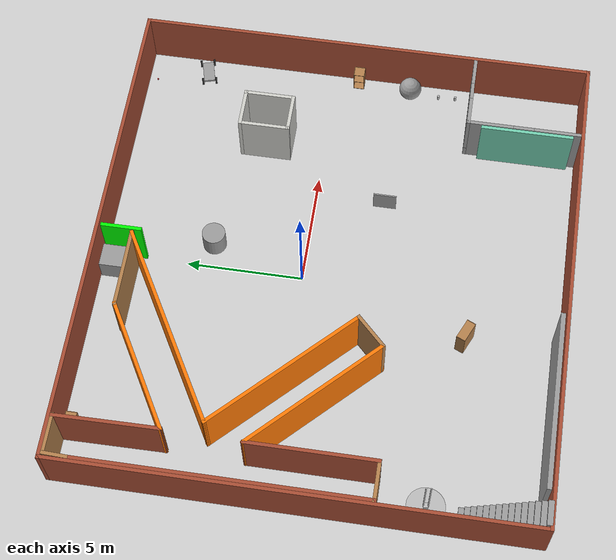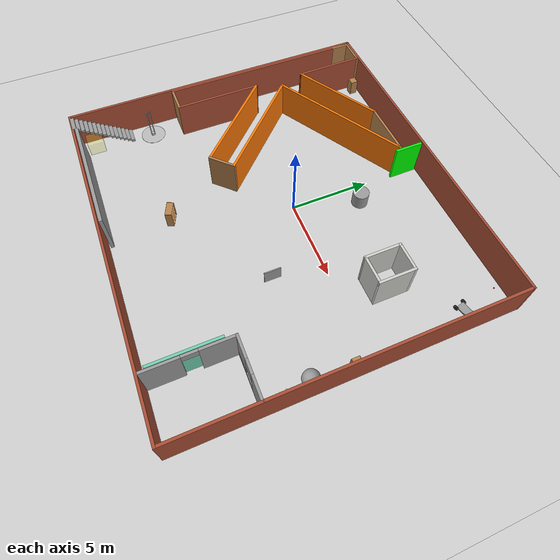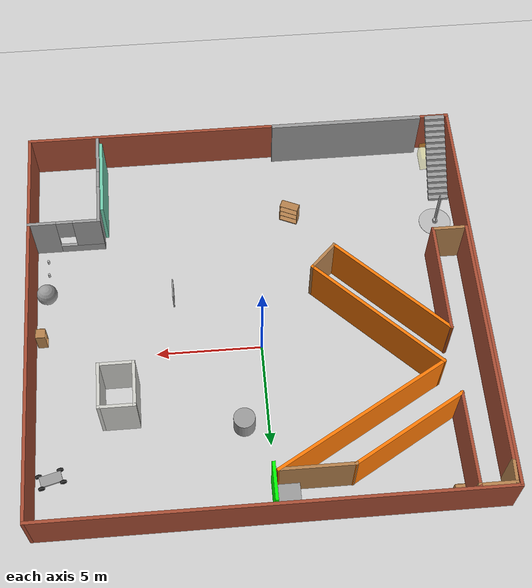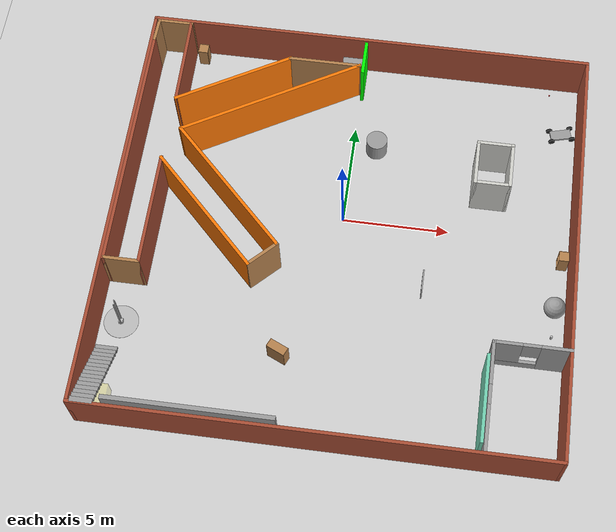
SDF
<sdf version="1.6">
 <world name="default">
  <plugin name="welcome_msg" filename="libwelcome_msg.so"/>
  <light name="sun" type="directional">
   <pose>0 0 10 0 -0 0</pose>
   <diffuse>0.8 0.8 0.8 1</diffuse>
   <specular>0.2 0.2 0.2 1</specular>
   <attenuation>
    <range>1000</range>
    <constant>0.9</constant>
    <linear>0.01</linear>
    <quadratic>0.001</quadratic>
   </attenuation>
   <direction>-0.5 0.1 -0.9</direction>
  </light>
  <model name="ground_plane">
   <static>1</static>
   <link name="link">
    <collision name="collision">
     <geometry><plane><normal>0 0 1</normal><size>100 100</size></plane></geometry>
     <surface>
      <contact><collide_bitmask>65535</collide_bitmask></contact>
      <friction><ode><mu>100</mu><mu2>50</mu2></ode></friction>
     </surface>
    </collision>
    <visual name="visual">
     <cast_shadows>0</cast_shadows>
     <geometry><plane><normal>0 0 1</normal><size>100 100</size></plane></geometry>
     <material>
      <script><uri>file://media/materials/scripts/gazebo.material</uri><name>Gazebo/Grey</name></script>
     </material>
    </visual>
   </link>
  </model>
  <gravity>0 0 -9.8</gravity>
  <magnetic_field>6e-06 2.3e-05 -4.2e-05</magnetic_field>
  <atmosphere type="adiabatic"/>
  <physics name="default_physics" default="0" type="ode">
   <max_step_size>0.001</max_step_size>
   <real_time_factor>1</real_time_factor>
   <real_time_update_rate>1000</real_time_update_rate>
  </physics>
  <scene><ambient>0.4 0.4 0.4 1</ambient><background>0.7 0.7 0.7 1</background><shadows>1</shadows></scene>
  <spherical_coordinates>
   <surface_model>EARTH_WGS84</surface_model>
   <latitude_deg>0</latitude_deg>
   <longitude_deg>0</longitude_deg>
   <elevation>0</elevation>
   <heading_deg>0</heading_deg>
  </spherical_coordinates>
  <model name="k_map">
   <pose>-5.13887 2.04621 0 0 -0 0</pose>
   <link name="Wall_0">
    <collision name="Wall_0_Collision">
     <geometry><box><size>12 0.15 2.5</size></box></geometry>
     <pose>0 0 1.25 0 -0 0</pose>
    </collision>
    <visual name="Wall_0_Visual">
     <pose>0 0 1.25 0 -0 0</pose>
     <geometry><box><size>12 0.15 2.5</size></box></geometry>
     <material>
      <script><uri>file://media/materials/scripts/gazebo.material</uri><name>Gazebo/Bricks</name></script>
      <ambient>1 1 1 1</ambient>
     </material>
     <meta><layer>0</layer></meta>
    </visual>
    <pose>-5.05323 -0.546651 0 0 0 -1.5708</pose>
   </link>
   <link name="Wall_1">
    <collision name="Wall_1_Collision">
     <geometry><box><size>1.75 0.15 2.5</size></box></geometry>
     <pose>0 0 1.25 0 -0 0</pose>
    </collision>
    <visual name="Wall_1_Visual">
     <pose>0 0 1.25 0 -0 0</pose>
     <geometry><box><size>1.75 0.15 2.5</size></box></geometry>
     <material>
      <script><uri>file://media/materials/scripts/gazebo.material</uri><name>Gazebo/Wood</name></script>
      <ambient>1 1 1 1</ambient>
     </material>
     <meta><layer>0</layer></meta>
    </visual>
    <pose>-4.25323 -6.47165 0 0 -0 0</pose>
   </link>
   <link name="Wall_10">
    <collision name="Wall_10_Collision">
     <geometry><box><size>1.75 0.15 2.5</size></box></geometry>
     <pose>0 0 1.25 0 -0 0</pose>
    </collision>
    <visual name="Wall_10_Visual">
     <pose>0 0 1.25 0 -0 0</pose>
     <geometry><box><size>1.75 0.15 2.5</size></box></geometry>
     <material>
      <script><uri>file://media/materials/scripts/gazebo.material</uri><name>Gazebo/Wood</name></script>
      <ambient>1 1 1 1</ambient>
     </material>
     <meta><layer>0</layer></meta>
    </visual>
    <pose>-4.21074 6.46879 0 0 -0 3.14159</pose>
   </link>
   <link name="Wall_14">
    <collision name="Wall_14_Collision">
     <geometry><box><size>1.24127 0.15 2.5</size></box></geometry>
     <pose>0 0 1.25 0 -0 0</pose>
    </collision>
    <visual name="Wall_14_Visual">
     <pose>0 0 1.25 0 -0 0</pose>
     <geometry><box><size>1.24127 0.15 2.5</size></box></geometry>
     <material>
      <script><uri>file://media/materials/scripts/gazebo.material</uri><name>Gazebo/Wood</name></script>
      <ambient>1 1 1 1</ambient>
     </material>
     <meta><layer>0</layer></meta>
    </visual>
    <pose>-5.03198 5.92357 0 0 -0 1.53185</pose>
   </link>
   <link name="Wall_2">
    <collision name="Wall_2_Collision">
     <geometry><box><size>5.5 0.15 2.5</size></box></geometry>
     <pose>0 0 1.25 0 -0 0</pose>
    </collision>
    <visual name="Wall_2_Visual">
     <pose>0 0 1.25 0 -0 0</pose>
     <geometry><box><size>5.5 0.15 2.5</size></box></geometry>
     <material>
      <script><uri>file://media/materials/scripts/gazebo.material</uri><name>Gazebo/Bricks</name></script>
      <ambient>1 1 1 1</ambient>
     </material>
     <meta><layer>0</layer></meta>
    </visual>
    <pose>-3.45323 -3.79665 0 0 -0 1.5708</pose>
   </link>
   <link name="Wall_3">
    <collision name="Wall_3_Collision">
     <geometry><box><size>7 0.15 2.5</size></box></geometry>
     <pose>0 0 1.25 0 -0 0</pose>
    </collision>
    <visual name="Wall_3_Visual">
     <pose>0 0 1.25 0 -0 0</pose>
     <geometry><box><size>7 0.15 2.5</size></box></geometry>
     <material>
      <script><uri>file://media/materials/scripts/gazebo.material</uri><name>Gazebo/Grey</name></script>
      <ambient>0.996078 0.47451 0.0196078 1</ambient>
     </material>
     <meta><layer>0</layer></meta>
    </visual>
    <pose>-1.03139 -3.54349 0 0 0 -0.785398</pose>
   </link>
   <link name="Wall_4">
    <collision name="Wall_4_Collision">
     <geometry><box><size>1.75 0.15 2.5</size></box></geometry>
     <pose>0 0 1.25 0 -0 0</pose>
    </collision>
    <visual name="Wall_4_Visual">
     <pose>0 0 1.25 0 -0 0</pose>
     <geometry><box><size>1.75 0.15 2.5</size></box></geometry>
     <material>
      <script><uri>file://media/materials/scripts/gazebo.material</uri><name>Gazebo/Wood</name></script>
      <ambient>1 1 1 1</ambient>
     </material>
     <meta><layer>0</layer></meta>
    </visual>
    <pose>1.95614 -5.39965 0 0 -0 0.785398</pose>
   </link>
   <link name="Wall_5">
    <collision name="Wall_5_Collision">
     <geometry><box><size>7.75 0.15 2.5</size></box></geometry>
     <pose>0 0 1.25 0 -0 0</pose>
    </collision>
    <visual name="Wall_5_Visual">
     <pose>0 0 1.25 0 -0 0</pose>
     <geometry><box><size>7.75 0.15 2.5</size></box></geometry>
     <material>
      <script><uri>file://media/materials/scripts/gazebo.material</uri><name>Gazebo/Grey</name></script>
      <ambient>0.996078 0.47451 0.0196078 1</ambient>
     </material>
     <meta><layer>0</layer></meta>
    </visual>
    <pose>-0.165184 -2.14696 0 0 -0 2.35619</pose>
   </link>
   <link name="Wall_6">
    <collision name="Wall_6_Collision">
     <geometry><box><size>9.25 0.15 2.5</size></box></geometry>
     <pose>0 0 1.25 0 -0 0</pose>
    </collision>
    <visual name="Wall_6_Visual">
     <pose>0 0 1.25 0 -0 0</pose>
     <geometry><box><size>9.25 0.15 2.5</size></box></geometry>
     <material>
      <script><uri>file://media/materials/scripts/gazebo.material</uri><name>Gazebo/Grey</name></script>
      <ambient>0.996078 0.47451 0.0196078 1</ambient>
     </material>
     <meta><layer>0</layer></meta>
    </visual>
    <pose>1.08823 2.81505 0 0 -0 0.523599</pose>
   </link>
   <link name="Wall_7">
    <collision name="Wall_7_Collision">
     <geometry><box><size>3.5 0.15 2.5</size></box></geometry>
     <pose>0 0 1.25 0 -0 0</pose>
    </collision>
    <visual name="Wall_7_Visual">
     <pose>0 0 1.25 0 -0 0</pose>
     <geometry><box><size>3.5 0.15 2.5</size></box></geometry>
     <material>
      <script><uri>file://media/materials/scripts/gazebo.material</uri><name>Gazebo/Wood</name></script>
      <ambient>1 1 1 1</ambient>
     </material>
     <meta><layer>0</layer></meta>
    </visual>
    <pose>3.35364 5.09005 0 0 -0 3.14159</pose>
   </link>
   <link name="Wall_8">
    <collision name="Wall_8_Collision">
     <geometry><box><size>6 0.15 2.5</size></box></geometry>
     <pose>0 0 1.25 0 -0 0</pose>
    </collision>
    <visual name="Wall_8_Visual">
     <pose>0 0 1.25 0 -0 0</pose>
     <geometry><box><size>6 0.15 2.5</size></box></geometry>
     <material>
      <script><uri>file://media/materials/scripts/gazebo.material</uri><name>Gazebo/Grey</name></script>
      <ambient>0.996078 0.47451 0.0196078 1</ambient>
     </material>
     <meta><layer>0</layer></meta>
    </visual>
    <pose>-0.854482 3.62755 0 0 0 -2.61799</pose>
   </link>
   <link name="Wall_9">
    <collision name="Wall_9_Collision">
     <geometry><box><size>4.45399 0.15 2.5</size></box></geometry>
     <pose>0 0 1.25 0 -0 0</pose>
    </collision>
    <visual name="Wall_9_Visual">
     <pose>0 0 1.25 0 -0 0</pose>
     <geometry><box><size>4.45399 0.15 2.5</size></box></geometry>
     <material>
      <script><uri>file://media/materials/scripts/gazebo.material</uri><name>Gazebo/Bricks</name></script>
      <ambient>1 1 1 1</ambient>
     </material>
     <meta><layer>0</layer></meta>
    </visual>
    <pose>-3.41074 4.31692 0 0 -0 1.58154</pose>
   </link>
   <static>1</static>
  </model>
  <model name="kevin_2">
   <pose>0.211598 -1.27295 0 0 -0 0</pose>
   <link name="Stairs_1">
    <visual name="Stairs_1_Visual_0">
     <pose>-9.91319 -6.55547 0.083333 0 -0 0</pose>
     <geometry><box><size>1 0.233333 0.166667</size></box></geometry>
     <material>
      <script><uri>file://media/materials/scripts/gazebo.material</uri><name>Gazebo/Grey</name></script>
      <ambient>1 1 1 1</ambient>
     </material>
     <meta><layer>0</layer></meta>
    </visual>
    <collision name="Stairs_1_Collision_0">
     <geometry><box><size>1 0.233333 0.166667</size></box></geometry>
     <pose>-9.91319 -6.55547 0.083333 0 -0 0</pose>
    </collision>
    <visual name="Stairs_1_Visual_1">
     <pose>-9.91319 -6.78881 0.25 0 -0 0</pose>
     <geometry><box><size>1 0.233333 0.166667</size></box></geometry>
     <material>
      <script><uri>file://media/materials/scripts/gazebo.material</uri><name>Gazebo/Grey</name></script>
      <ambient>1 1 1 1</ambient>
     </material>
     <meta><layer>0</layer></meta>
    </visual>
    <collision name="Stairs_1_Collision_1">
     <geometry><box><size>1 0.233333 0.166667</size></box></geometry>
     <pose>-9.91319 -6.78881 0.25 0 -0 0</pose>
    </collision>
    <visual name="Stairs_1_Visual_2">
     <pose>-9.91319 -7.02214 0.416667 0 -0 0</pose>
     <geometry><box><size>1 0.233333 0.166667</size></box></geometry>
     <material>
      <script><uri>file://media/materials/scripts/gazebo.material</uri><name>Gazebo/Grey</name></script>
      <ambient>1 1 1 1</ambient>
     </material>
     <meta><layer>0</layer></meta>
    </visual>
    <collision name="Stairs_1_Collision_2">
     <geometry><box><size>1 0.233333 0.166667</size></box></geometry>
     <pose>-9.91319 -7.02214 0.416667 0 -0 0</pose>
    </collision>
    <visual name="Stairs_1_Visual_3">
     <pose>-9.91319 -7.25547 0.583333 0 -0 0</pose>
     <geometry><box><size>1 0.233333 0.166667</size></box></geometry>
     <material>
      <script><uri>file://media/materials/scripts/gazebo.material</uri><name>Gazebo/Grey</name></script>
      <ambient>1 1 1 1</ambient>
     </material>
     <meta><layer>0</layer></meta>
    </visual>
    <collision name="Stairs_1_Collision_3">
     <geometry><box><size>1 0.233333 0.166667</size></box></geometry>
     <pose>-9.91319 -7.25547 0.583333 0 -0 0</pose>
    </collision>
    <visual name="Stairs_1_Visual_4">
     <pose>-9.91319 -7.48881 0.75 0 -0 0</pose>
     <geometry><box><size>1 0.233333 0.166667</size></box></geometry>
     <material>
      <script><uri>file://media/materials/scripts/gazebo.material</uri><name>Gazebo/Grey</name></script>
      <ambient>1 1 1 1</ambient>
     </material>
     <meta><layer>0</layer></meta>
    </visual>
    <collision name="Stairs_1_Collision_4">
     <geometry><box><size>1 0.233333 0.166667</size></box></geometry>
     <pose>-9.91319 -7.48881 0.75 0 -0 0</pose>
    </collision>
    <visual name="Stairs_1_Visual_5">
     <pose>-9.91319 -7.72214 0.916667 0 -0 0</pose>
     <geometry><box><size>1 0.233333 0.166667</size></box></geometry>
     <material>
      <script><uri>file://media/materials/scripts/gazebo.material</uri><name>Gazebo/Grey</name></script>
      <ambient>1 1 1 1</ambient>
     </material>
     <meta><layer>0</layer></meta>
    </visual>
    <collision name="Stairs_1_Collision_5">
     <geometry><box><size>1 0.233333 0.166667</size></box></geometry>
     <pose>-9.91319 -7.72214 0.916667 0 -0 0</pose>
    </collision>
    <visual name="Stairs_1_Visual_6">
     <pose>-9.91319 -7.95547 1.08333 0 -0 0</pose>
     <geometry><box><size>1 0.233333 0.166667</size></box></geometry>
     <material>
      <script><uri>file://media/materials/scripts/gazebo.material</uri><name>Gazebo/Grey</name></script>
      <ambient>1 1 1 1</ambient>
     </material>
     <meta><layer>0</layer></meta>
    </visual>
    <collision name="Stairs_1_Collision_6">
     <geometry><box><size>1 0.233333 0.166667</size></box></geometry>
     <pose>-9.91319 -7.95547 1.08333 0 -0 0</pose>
    </collision>
    <visual name="Stairs_1_Visual_7">
     <pose>-9.91319 -8.18881 1.25 0 -0 0</pose>
     <geometry><box><size>1 0.233333 0.166667</size></box></geometry>
     <material>
      <script><uri>file://media/materials/scripts/gazebo.material</uri><name>Gazebo/Grey</name></script>
      <ambient>1 1 1 1</ambient>
     </material>
     <meta><layer>0</layer></meta>
    </visual>
    <collision name="Stairs_1_Collision_7">
     <geometry><box><size>1 0.233333 0.166667</size></box></geometry>
     <pose>-9.91319 -8.18881 1.25 0 -0 0</pose>
    </collision>
    <visual name="Stairs_1_Visual_8">
     <pose>-9.91319 -8.42214 1.41667 0 -0 0</pose>
     <geometry><box><size>1 0.233333 0.166667</size></box></geometry>
     <material>
      <script><uri>file://media/materials/scripts/gazebo.material</uri><name>Gazebo/Grey</name></script>
      <ambient>1 1 1 1</ambient>
     </material>
     <meta><layer>0</layer></meta>
    </visual>
    <collision name="Stairs_1_Collision_8">
     <geometry><box><size>1 0.233333 0.166667</size></box></geometry>
     <pose>-9.91319 -8.42214 1.41667 0 -0 0</pose>
    </collision>
    <visual name="Stairs_1_Visual_9">
     <pose>-9.91319 -8.65547 1.58333 0 -0 0</pose>
     <geometry><box><size>1 0.233333 0.166667</size></box></geometry>
     <material>
      <script><uri>file://media/materials/scripts/gazebo.material</uri><name>Gazebo/Grey</name></script>
      <ambient>1 1 1 1</ambient>
     </material>
     <meta><layer>0</layer></meta>
    </visual>
    <collision name="Stairs_1_Collision_9">
     <geometry><box><size>1 0.233333 0.166667</size></box></geometry>
     <pose>-9.91319 -8.65547 1.58333 0 -0 0</pose>
    </collision>
    <visual name="Stairs_1_Visual_10">
     <pose>-9.91319 -8.88881 1.75 0 -0 0</pose>
     <geometry><box><size>1 0.233333 0.166667</size></box></geometry>
     <material>
      <script><uri>file://media/materials/scripts/gazebo.material</uri><name>Gazebo/Grey</name></script>
      <ambient>1 1 1 1</ambient>
     </material>
     <meta><layer>0</layer></meta>
    </visual>
    <collision name="Stairs_1_Collision_10">
     <geometry><box><size>1 0.233333 0.166667</size></box></geometry>
     <pose>-9.91319 -8.88881 1.75 0 -0 0</pose>
    </collision>
    <visual name="Stairs_1_Visual_11">
     <pose>-9.91319 -9.12214 1.91667 0 -0 0</pose>
     <geometry><box><size>1 0.233333 0.166667</size></box></geometry>
     <material>
      <script><uri>file://media/materials/scripts/gazebo.material</uri><name>Gazebo/Grey</name></script>
      <ambient>1 1 1 1</ambient>
     </material>
     <meta><layer>0</layer></meta>
    </visual>
    <collision name="Stairs_1_Collision_11">
     <geometry><box><size>1 0.233333 0.166667</size></box></geometry>
     <pose>-9.91319 -9.12214 1.91667 0 -0 0</pose>
    </collision>
    <visual name="Stairs_1_Visual_12">
     <pose>-9.91319 -9.35547 2.08333 0 -0 0</pose>
     <geometry><box><size>1 0.233333 0.166667</size></box></geometry>
     <material>
      <script><uri>file://media/materials/scripts/gazebo.material</uri><name>Gazebo/Grey</name></script>
      <ambient>1 1 1 1</ambient>
     </material>
     <meta><layer>0</layer></meta>
    </visual>
    <collision name="Stairs_1_Collision_12">
     <geometry><box><size>1 0.233333 0.166667</size></box></geometry>
     <pose>-9.91319 -9.35547 2.08333 0 -0 0</pose>
    </collision>
    <visual name="Stairs_1_Visual_13">
     <pose>-9.91319 -9.58881 2.25 0 -0 0</pose>
     <geometry><box><size>1 0.233333 0.166667</size></box></geometry>
     <material>
      <script><uri>file://media/materials/scripts/gazebo.material</uri><name>Gazebo/Grey</name></script>
      <ambient>1 1 1 1</ambient>
     </material>
     <meta><layer>0</layer></meta>
    </visual>
    <collision name="Stairs_1_Collision_13">
     <geometry><box><size>1 0.233333 0.166667</size></box></geometry>
     <pose>-9.91319 -9.58881 2.25 0 -0 0</pose>
    </collision>
    <visual name="Stairs_1_Visual_14">
     <pose>-9.91319 -9.82214 2.41667 0 -0 0</pose>
     <geometry><box><size>1 0.233333 0.166667</size></box></geometry>
     <material>
      <script><uri>file://media/materials/scripts/gazebo.material</uri><name>Gazebo/Grey</name></script>
      <ambient>1 1 1 1</ambient>
     </material>
     <meta><layer>0</layer></meta>
    </visual>
    <collision name="Stairs_1_Collision_14">
     <geometry><box><size>1 0.233333 0.166667</size></box></geometry>
     <pose>-9.91319 -9.82214 2.41667 0 -0 0</pose>
    </collision>
   </link>
   <link name="Wall_11">
    <collision name="Wall_11_Collision">
     <geometry><box><size>20 0.15 2.5</size></box></geometry>
     <pose>0 0 1.25 0 -0 0</pose>
    </collision>
    <visual name="Wall_11_Visual">
     <pose>0 0 1.25 0 -0 0</pose>
     <geometry><box><size>20 0.15 2.5</size></box></geometry>
     <material>
      <script><uri>file://media/materials/scripts/gazebo.material</uri><name>Gazebo/Bricks</name></script>
      <ambient>1 1 1 1</ambient>
     </material>
     <meta><layer>0</layer></meta>
    </visual>
    <pose>-10.55 0 0 0 0 -1.5708</pose>
   </link>
   <link name="Wall_12">
    <collision name="Wall_12_Collision">
     <geometry><box><size>21.25 0.15 2.5</size></box></geometry>
     <pose>0 0 1.25 0 -0 0</pose>
    </collision>
    <visual name="Wall_12_Visual">
     <pose>0 0 1.25 0 -0 0</pose>
     <geometry><box><size>21.25 0.15 2.5</size></box></geometry>
     <material>
      <script><uri>file://media/materials/scripts/gazebo.material</uri><name>Gazebo/Bricks</name></script>
      <ambient>1 1 1 1</ambient>
     </material>
     <meta><layer>0</layer></meta>
    </visual>
    <pose>0 -9.925 0 0 -0 0</pose>
   </link>
   <link name="Wall_13">
    <collision name="Wall_13_Collision">
     <geometry><box><size>20 0.15 2.5</size></box></geometry>
     <pose>0 0 1.25 0 -0 0</pose>
    </collision>
    <visual name="Wall_13_Visual">
     <pose>0 0 1.25 0 -0 0</pose>
     <geometry><box><size>20 0.15 2.5</size></box></geometry>
     <material>
      <script><uri>file://media/materials/scripts/gazebo.material</uri><name>Gazebo/Bricks</name></script>
      <ambient>1 1 1 1</ambient>
     </material>
     <meta><layer>0</layer></meta>
    </visual>
    <pose>10.55 0 0 0 -0 1.5708</pose>
   </link>
   <link name="Wall_14">
    <collision name="Wall_14_Collision">
     <geometry><box><size>21.25 0.15 2.5</size></box></geometry>
     <pose>0 0 1.25 0 -0 0</pose>
    </collision>
    <visual name="Wall_14_Visual">
     <pose>0 0 1.25 0 -0 0</pose>
     <geometry><box><size>21.25 0.15 2.5</size></box></geometry>
     <material>
      <script><uri>file://media/materials/scripts/gazebo.material</uri><name>Gazebo/Bricks</name></script>
      <ambient>1 1 1 1</ambient>
     </material>
     <meta><layer>0</layer></meta>
    </visual>
    <pose>0 9.925 0 0 -0 3.14159</pose>
   </link>
   <link name="Wall_16">
    <pose>8.8606 -4.93398 0 0 -0 3.14159</pose>
    <visual name="Wall_16_Visual_0">
     <pose>-1.06341 0 1.25 0 -0 0</pose>
     <geometry><box><size>1.37317 0.15 2.5</size></box></geometry>
     <material>
      <script><uri>file://media/materials/scripts/gazebo.material</uri><name>Gazebo/Grey</name></script>
      <ambient>1 1 1 1</ambient>
     </material>
     <meta><layer>0</layer></meta>
    </visual>
    <collision name="Wall_16_Collision_0">
     <geometry><box><size>1.37317 0.15 2.5</size></box></geometry>
     <pose>-1.06341 0 1.25 0 -0 0</pose>
    </collision>
    <visual name="Wall_16_Visual_1">
     <pose>0.686585 0 0.25 0 -0 0</pose>
     <geometry><box><size>2.12683 0.15 0.5</size></box></geometry>
     <material>
      <script><uri>file://media/materials/scripts/gazebo.material</uri><name>Gazebo/Grey</name></script>
      <ambient>1 1 1 1</ambient>
     </material>
     <meta><layer>0</layer></meta>
    </visual>
    <collision name="Wall_16_Collision_1">
     <geometry><box><size>2.12683 0.15 0.5</size></box></geometry>
     <pose>0.686585 0 0.25 0 -0 0</pose>
    </collision>
    <visual name="Wall_16_Visual_2">
     <pose>1.08658 0 1.5 0 -0 0</pose>
     <geometry><box><size>1.32683 0.15 2</size></box></geometry>
     <material>
      <script><uri>file://media/materials/scripts/gazebo.material</uri><name>Gazebo/Grey</name></script>
      <ambient>1 1 1 1</ambient>
     </material>
     <meta><layer>0</layer></meta>
    </visual>
    <collision name="Wall_16_Collision_2">
     <geometry><box><size>1.32683 0.15 2</size></box></geometry>
     <pose>1.08658 0 1.5 0 -0 0</pose>
    </collision>
    <visual name="Wall_16_Visual_3">
     <pose>0.02317 0 1.9 0 -0 0</pose>
     <geometry><box><size>0.8 0.15 1.2</size></box></geometry>
     <material>
      <script><uri>file://media/materials/scripts/gazebo.material</uri><name>Gazebo/Grey</name></script>
      <ambient>1 1 1 1</ambient>
     </material>
     <meta><layer>0</layer></meta>
    </visual>
    <collision name="Wall_16_Collision_3">
     <geometry><box><size>0.8 0.15 1.2</size></box></geometry>
     <pose>0.02317 0 1.9 0 -0 0</pose>
    </collision>
   </link>
   <link name="Wall_17">
    <pose>7.1856 -7.35898 0 0 0 -1.5708</pose>
    <visual name="Wall_17_Visual_0">
     <pose>-1.48463 0 1.25 0 -0 0</pose>
     <geometry><box><size>2.03074 0.15 2.5</size></box></geometry>
     <material>
      <script><uri>file://media/materials/scripts/gazebo.material</uri><name>Gazebo/Grey</name></script>
      <ambient>1 1 1 1</ambient>
     </material>
     <meta><layer>0</layer></meta>
    </visual>
    <collision name="Wall_17_Collision_0">
     <geometry><box><size>2.03074 0.15 2.5</size></box></geometry>
     <pose>-1.48463 0 1.25 0 -0 0</pose>
    </collision>
    <visual name="Wall_17_Visual_1">
     <pose>1.46537 0 1.25 0 -0 0</pose>
     <geometry><box><size>2.06926 0.15 2.5</size></box></geometry>
     <material>
      <script><uri>file://media/materials/scripts/gazebo.material</uri><name>Gazebo/Grey</name></script>
      <ambient>1 1 1 1</ambient>
     </material>
     <meta><layer>0</layer></meta>
    </visual>
    <collision name="Wall_17_Collision_1">
     <geometry><box><size>2.06926 0.15 2.5</size></box></geometry>
     <pose>1.46537 0 1.25 0 -0 0</pose>
    </collision>
    <visual name="Wall_17_Visual_2">
     <pose>-0.01926 0 2.25 0 -0 0</pose>
     <geometry><box><size>0.9 0.15 0.5</size></box></geometry>
     <material>
      <script><uri>file://media/materials/scripts/gazebo.material</uri><name>Gazebo/Grey</name></script>
      <ambient>1 1 1 1</ambient>
     </material>
     <meta><layer>0</layer></meta>
    </visual>
    <collision name="Wall_17_Collision_2">
     <geometry><box><size>0.9 0.15 0.5</size></box></geometry>
     <pose>-0.01926 0 2.25 0 -0 0</pose>
    </collision>
   </link>
   <link name="Wall_22">
    <collision name="Wall_22_Collision">
     <geometry><box><size>2.25 0.15 2.5</size></box></geometry>
     <pose>0 0 1.25 0 -0 0</pose>
    </collision>
    <visual name="Wall_22_Visual">
     <pose>0 0 1.25 0 -0 0</pose>
     <geometry><box><size>2.25 0.15 2.5</size></box></geometry>
     <material>
      <script><uri>file://media/materials/scripts/gazebo.material</uri><name>Gazebo/CeilingTiled</name></script>
      <ambient>1 1 1 1</ambient>
     </material>
     <meta><layer>0</layer></meta>
    </visual>
    <pose>5.72412 3.85125 0 0 0 -1.5708</pose>
   </link>
   <link name="Wall_23">
    <collision name="Wall_23_Collision">
     <geometry><box><size>1.75 0.15 2.5</size></box></geometry>
     <pose>0 0 1.25 0 -0 0</pose>
    </collision>
    <visual name="Wall_23_Visual">
     <pose>0 0 1.25 0 -0 0</pose>
     <geometry><box><size>1.75 0.15 2.5</size></box></geometry>
     <material>
      <script><uri>file://media/materials/scripts/gazebo.material</uri><name>Gazebo/CeilingTiled</name></script>
      <ambient>1 1 1 1</ambient>
     </material>
     <meta><layer>0</layer></meta>
    </visual>
    <pose>6.52412 2.80125 0 0 -0 0</pose>
   </link>
   <link name="Wall_24">
    <collision name="Wall_24_Collision">
     <geometry><box><size>2.25 0.15 2.5</size></box></geometry>
     <pose>0 0 1.25 0 -0 0</pose>
    </collision>
    <visual name="Wall_24_Visual">
     <pose>0 0 1.25 0 -0 0</pose>
     <geometry><box><size>2.25 0.15 2.5</size></box></geometry>
     <material>
      <script><uri>file://media/materials/scripts/gazebo.material</uri><name>Gazebo/CeilingTiled</name></script>
      <ambient>1 1 1 1</ambient>
     </material>
     <meta><layer>0</layer></meta>
    </visual>
    <pose>7.32412 3.85125 0 0 -0 1.5708</pose>
   </link>
   <link name="Wall_25">
    <collision name="Wall_25_Collision">
     <geometry><box><size>1.75 0.15 2.5</size></box></geometry>
     <pose>0 0 1.25 0 -0 0</pose>
    </collision>
    <visual name="Wall_25_Visual">
     <pose>0 0 1.25 0 -0 0</pose>
     <geometry><box><size>1.75 0.15 2.5</size></box></geometry>
     <material>
      <script><uri>file://media/materials/scripts/gazebo.material</uri><name>Gazebo/CeilingTiled</name></script>
      <ambient>1 1 1 1</ambient>
     </material>
     <meta><layer>0</layer></meta>
    </visual>
    <pose>6.52412 4.90125 0 0 -0 3.14159</pose>
   </link>
   <static>1</static>
  </model>
  <model name="unit_box">
   <pose>4.06478 -3.02672 0.5 0 4e-06 5e-06</pose>
   <link name="link">
    <inertial>
     <mass>1</mass>
     <inertia>
      <ixx>0.166667</ixx>
      <ixy>0</ixy>
      <ixz>0</ixz>
      <iyy>0.166667</iyy>
      <iyz>0</iyz>
      <izz>0.166667</izz>
     </inertia>
    </inertial>
    <collision name="collision"><geometry><box><size>0.0612562 1 1</size></box></geometry></collision>
    <visual name="visual">
     <geometry><box><size>0.0612562 1 1</size></box></geometry>
     <material>
      <script><name>Gazebo/Grey</name><uri>file://media/materials/scripts/gazebo.material</uri></script>
     </material>
    </visual>
   </link>
  </model>
  <model name="unit_cylinder">
   <pose>1.13703 4.00384 0.499994 -4e-06 -1e-06 0</pose>
   <link name="link">
    <inertial>
     <mass>1</mass>
     <inertia><ixx>0.145833</ixx><ixy>0</ixy><ixz>0</ixz><iyy>0.145833</iyy><iyz>0</iyz><izz>0.125</izz></inertia>
    </inertial>
    <collision name="collision">
     <geometry><cylinder><radius>0.5</radius><length>1</length></cylinder></geometry>
    </collision>
    <visual name="visual">
     <geometry><cylinder><radius>0.5</radius><length>1</length></cylinder></geometry>
     <material>
      <script><name>Gazebo/Grey</name><uri>file://media/materials/scripts/gazebo.material</uri></script>
     </material>
    </visual>
   </link>
  </model>
  <model name="bookshelf">
   <static>1</static>
   <link name="link">
    <inertial><mass>1</mass></inertial>
    <collision name="back">
     <pose>0 0.005 0.6 0 -0 0</pose>
     <geometry><box><size>0.9 0.01 1.2</size></box></geometry>
    </collision>
    <visual name="visual1">
     <pose>0 0.005 0.6 0 -0 0</pose>
     <geometry><box><size>0.9 0.01 1.2</size></box></geometry>
     <material>
      <script><uri>file://media/materials/scripts/gazebo.material</uri><name>Gazebo/Wood</name></script>
     </material>
    </visual>
    <collision name="left_side">
     <pose>0.45 -0.195 0.6 0 -0 0</pose>
     <geometry><box><size>0.02 0.4 1.2</size></box></geometry>
    </collision>
    <visual name="visual2">
     <pose>0.45 -0.195 0.6 0 -0 0</pose>
     <geometry><box><size>0.02 0.4 1.2</size></box></geometry>
     <material>
      <script><uri>file://media/materials/scripts/gazebo.material</uri><name>Gazebo/Wood</name></script>
     </material>
    </visual>
    <collision name="right_side">
     <pose>-0.45 -0.195 0.6 0 -0 0</pose>
     <geometry><box><size>0.02 0.4 1.2</size></box></geometry>
    </collision>
    <visual name="visual3">
     <pose>-0.45 -0.195 0.6 0 -0 0</pose>
     <geometry><box><size>0.02 0.4 1.2</size></box></geometry>
     <material>
      <script><uri>file://media/materials/scripts/gazebo.material</uri><name>Gazebo/Wood</name></script>
     </material>
    </visual>
    <collision name="bottom">
     <pose>0 -0.195 0.03 0 -0 0</pose>
     <geometry><box><size>0.88 0.4 0.06</size></box></geometry>
    </collision>
    <visual name="visual4">
     <pose>0 -0.195 0.03 0 -0 0</pose>
     <geometry><box><size>0.88 0.4 0.06</size></box></geometry>
     <material>
      <script><uri>file://media/materials/scripts/gazebo.material</uri><name>Gazebo/Wood</name></script>
     </material>
    </visual>
    <collision name="top">
     <pose>0 -0.195 1.19 0 -0 0</pose>
     <geometry><box><size>0.88 0.4 0.02</size></box></geometry>
    </collision>
    <visual name="visual5">
     <pose>0 -0.195 1.19 0 -0 0</pose>
     <geometry><box><size>0.88 0.4 0.02</size></box></geometry>
     <material>
      <script><uri>file://media/materials/scripts/gazebo.material</uri><name>Gazebo/Wood</name></script>
     </material>
    </visual>
    <collision name="low_shelf">
     <pose>0 -0.195 0.43 0 -0 0</pose>
     <geometry><box><size>0.88 0.4 0.02</size></box></geometry>
    </collision>
    <visual name="visual6">
     <pose>0 -0.195 0.43 0 -0 0</pose>
     <geometry><box><size>0.88 0.4 0.02</size></box></geometry>
     <material>
      <script><uri>file://media/materials/scripts/gazebo.material</uri><name>Gazebo/Wood</name></script>
     </material>
    </visual>
    <collision name="high_shelf">
     <pose>0 -0.195 0.8 0 -0 0</pose>
     <geometry><box><size>0.88 0.4 0.02</size></box></geometry>
    </collision>
    <visual name="visual7">
     <pose>0 -0.195 0.8 0 -0 0</pose>
     <geometry><box><size>0.88 0.4 0.02</size></box></geometry>
     <material>
      <script><uri>file://media/materials/scripts/gazebo.material</uri><name>Gazebo/Wood</name></script>
     </material>
    </visual>
   </link>
   <pose>-2.05496 -7.35956 0 0 -0 2.72202</pose>
  </model>
  <model name="cart_front_steer">
   <link name="chassis">
    <pose>0 0 0.15 0 -0 0</pose>
    <inertial>
     <pose>0.1 0 0 0 -0 0</pose>
     <mass>10</mass>
     <inertia>
      <ixx>0.216667</ixx>
      <iyy>0.841667</iyy>
      <izz>1.04167</izz>
      <ixy>0</ixy>
      <ixz>0</ixz>
      <iyz>0</iyz>
     </inertia>
    </inertial>
    <collision name="collision"><geometry><box><size>1 0.5 0.1</size></box></geometry></collision>
    <visual name="visual">
     <geometry><box><size>1 0.5 0.1</size></box></geometry>
     <material>
      <script><uri>file://media/materials/scripts/gazebo.material</uri><name>Gazebo/Grey</name></script>
     </material>
    </visual>
   </link>
   <link name="wheel_front_left">
    <pose>0.5 0.298 0.15 -1.5708 -0.087266 0</pose>
    <inertial>
     <mass>0.5</mass>
     <inertia>
      <ixx>0.00307917</ixx>
      <iyy>0.00307917</iyy>
      <izz>0.005625</izz>
      <ixy>0</ixy>
      <ixz>0</ixz>
      <iyz>0</iyz>
     </inertia>
    </inertial>
    <collision name="collision">
     <geometry><cylinder><radius>0.15</radius><length>0.08</length></cylinder></geometry>
    </collision>
    <visual name="visual">
     <geometry><cylinder><radius>0.15</radius><length>0.08</length></cylinder></geometry>
     <material>
      <script><uri>file://media/materials/scripts/gazebo.material</uri><name>Gazebo/Black</name></script>
     </material>
    </visual>
   </link>
   <joint name="wheel_front_left_steer_spin" type="universal">
    <parent>chassis</parent>
    <child>wheel_front_left</child>
    <axis>
     <xyz>0 -1 0</xyz>
     <limit><lower>-0.610865</lower><upper>0.610865</upper></limit>
     <use_parent_model_frame>0</use_parent_model_frame>
     <dynamics><spring_reference>0</spring_reference><spring_stiffness>0</spring_stiffness></dynamics>
    </axis>
    <axis2>
     <xyz>0 0 1</xyz>
     <use_parent_model_frame>0</use_parent_model_frame>
     <dynamics><spring_reference>0</spring_reference><spring_stiffness>0</spring_stiffness></dynamics>
    </axis2>
   </joint>
   <link name="wheel_front_right">
    <pose>0.5 -0.298 0.15 -1.5708 -0.087266 0</pose>
    <inertial>
     <mass>0.5</mass>
     <inertia>
      <ixx>0.00307917</ixx>
      <iyy>0.00307917</iyy>
      <izz>0.005625</izz>
      <ixy>0</ixy>
      <ixz>0</ixz>
      <iyz>0</iyz>
     </inertia>
    </inertial>
    <collision name="collision">
     <geometry><cylinder><radius>0.15</radius><length>0.08</length></cylinder></geometry>
    </collision>
    <visual name="visual">
     <geometry><cylinder><radius>0.15</radius><length>0.08</length></cylinder></geometry>
     <material>
      <script><uri>file://media/materials/scripts/gazebo.material</uri><name>Gazebo/Black</name></script>
     </material>
    </visual>
   </link>
   <joint name="wheel_front_right_steer_spin" type="universal">
    <parent>chassis</parent>
    <child>wheel_front_right</child>
    <axis>
     <xyz>0 -1 0</xyz>
     <limit><lower>-0.610865</lower><upper>0.610865</upper></limit>
     <use_parent_model_frame>0</use_parent_model_frame>
     <dynamics><spring_reference>0</spring_reference><spring_stiffness>0</spring_stiffness></dynamics>
    </axis>
    <axis2>
     <xyz>0 0 1</xyz>
     <use_parent_model_frame>0</use_parent_model_frame>
     <dynamics><spring_reference>0</spring_reference><spring_stiffness>0</spring_stiffness></dynamics>
    </axis2>
   </joint>
   <link name="wheel_rear_left">
    <pose>-0.5 0.298 0.15 -1.5708 0 0</pose>
    <inertial>
     <mass>0.5</mass>
     <inertia>
      <ixx>0.00307917</ixx>
      <iyy>0.00307917</iyy>
      <izz>0.005625</izz>
      <ixy>0</ixy>
      <ixz>0</ixz>
      <iyz>0</iyz>
     </inertia>
    </inertial>
    <collision name="collision">
     <geometry><cylinder><radius>0.15</radius><length>0.08</length></cylinder></geometry>
    </collision>
    <visual name="visual">
     <geometry><cylinder><radius>0.15</radius><length>0.08</length></cylinder></geometry>
     <material>
      <script><uri>file://media/materials/scripts/gazebo.material</uri><name>Gazebo/Black</name></script>
     </material>
    </visual>
   </link>
   <joint name="wheel_rear_left_spin" type="revolute">
    <parent>chassis</parent>
    <child>wheel_rear_left</child>
    <axis>
     <xyz>0 0 1</xyz>
     <use_parent_model_frame>0</use_parent_model_frame>
     <limit><lower>-1e+16</lower><upper>1e+16</upper></limit>
     <dynamics><spring_reference>0</spring_reference><spring_stiffness>0</spring_stiffness></dynamics>
    </axis>
   </joint>
   <link name="wheel_rear_right">
    <pose>-0.5 -0.298 0.15 -1.5708 0 0</pose>
    <inertial>
     <mass>0.5</mass>
     <inertia>
      <ixx>0.00307917</ixx>
      <iyy>0.00307917</iyy>
      <izz>0.005625</izz>
      <ixy>0</ixy>
      <ixz>0</ixz>
      <iyz>0</iyz>
     </inertia>
    </inertial>
    <collision name="collision">
     <geometry><cylinder><radius>0.15</radius><length>0.08</length></cylinder></geometry>
    </collision>
    <visual name="visual">
     <geometry><cylinder><radius>0.15</radius><length>0.08</length></cylinder></geometry>
     <material>
      <script><uri>file://media/materials/scripts/gazebo.material</uri><name>Gazebo/Black</name></script>
     </material>
    </visual>
   </link>
   <joint name="wheel_rear_right_spin" type="revolute">
    <parent>chassis</parent>
    <child>wheel_rear_right</child>
    <axis>
     <xyz>0 0 1</xyz>
     <use_parent_model_frame>0</use_parent_model_frame>
     <limit><lower>-1e+16</lower><upper>1e+16</upper></limit>
     <dynamics><spring_reference>0</spring_reference><spring_stiffness>0</spring_stiffness></dynamics>
    </axis>
   </joint>
   <pose>9.95044 5.92553 -2e-06 -1.6e-05 -1e-06 0.255699</pose>
  </model>
  <model name="grey_wall">
   <static>1</static>
   <link name="link">
    <pose>0 0 1.4 0 -0 0</pose>
    <collision name="collision"><geometry><box><size>7.5 0.2 2.8</size></box></geometry></collision>
    <visual name="visual">
     <cast_shadows>0</cast_shadows>
     <geometry><box><size>7.5 0.2 2.8</size></box></geometry>
     <material>
      <script>
       <uri>model://grey_wall/materials/scripts</uri>
       <uri>model://grey_wall/materials/textures</uri>
       <name>vrc/grey_wall</name>
      </script>
     </material>
    </visual>
   </link>
   <pose>-5.14997 -10.9358 0 0 -0 0</pose>
  </model>
  <model name="unit_sphere">
   <pose>10.1401 -3.42092 0.5 0 -0 0</pose>
   <link name="link">
    <inertial>
     <mass>1</mass>
     <inertia><ixx>0.1</ixx><ixy>0</ixy><ixz>0</ixz><iyy>0.1</iyy><iyz>0</iyz><izz>0.1</izz></inertia>
    </inertial>
    <collision name="collision"><geometry><sphere><radius>0.5</radius></sphere></geometry></collision>
    <visual name="visual">
     <geometry><sphere><radius>0.5</radius></sphere></geometry>
     <material>
      <script><name>Gazebo/Grey</name><uri>file://media/materials/scripts/gazebo.material</uri></script>
     </material>
    </visual>
   </link>
  </model>
  <model name="cabinet">
   <static>1</static>
   <link name="cabinet_bottom_plate">
    <inertial>
     <pose>0 0 -1 0 -0 0</pose>
     <inertia><ixx>2.05</ixx><ixy>0</ixy><ixz>0</ixz><iyy>2.05</iyy><iyz>0</iyz><izz>2.05</izz></inertia>
     <mass>25</mass>
    </inertial>
    <collision name="cabinet_bottom_plate_geom">
     <pose>0 0 0.01 0 -0 0</pose>
     <geometry><box><size>0.45 0.45 0.02</size></box></geometry>
    </collision>
    <visual name="cabinet_bottom_plate_geom_visual">
     <pose>0 0 0.01 0 -0 0</pose>
     <geometry><box><size>0.45 0.45 0.02</size></box></geometry>
     <material>
      <script><uri>file://media/materials/scripts/gazebo.material</uri><name>Gazebo/Wood</name></script>
     </material>
    </visual>
    <collision name="cabinet_bottom_plate_geom_cabinet_back_plate">
     <pose>0.235 0 0.51 0 -0 0</pose>
     <geometry><box><size>0.02 0.45 1.02</size></box></geometry>
    </collision>
    <visual name="cabinet_bottom_plate_geom_cabinet_back_plate_visual">
     <pose>0.235 0 0.51 0 -0 0</pose>
     <geometry><box><size>0.02 0.45 1.02</size></box></geometry>
     <material>
      <script><uri>file://media/materials/scripts/gazebo.material</uri><name>Gazebo/Wood</name></script>
     </material>
    </visual>
    <collision name="cabinet_bottom_plate_geom_cabinet_left_plate">
     <pose>0 0.235 0.51 0 -0 0</pose>
     <geometry><box><size>0.45 0.02 1.02</size></box></geometry>
    </collision>
    <visual name="cabinet_bottom_plate_geom_cabinet_left_plate_visual">
     <pose>0 0.235 0.51 0 -0 0</pose>
     <geometry><box><size>0.45 0.02 1.02</size></box></geometry>
     <material>
      <script><uri>file://media/materials/scripts/gazebo.material</uri><name>Gazebo/Wood</name></script>
     </material>
    </visual>
    <collision name="cabinet_bottom_plate_geom_cabinet_middle_plate">
     <pose>0 0 0.51 0 -0 0</pose>
     <geometry><box><size>0.45 0.45 0.02</size></box></geometry>
    </collision>
    <visual name="cabinet_bottom_plate_geom_cabinet_middle_plate_visual">
     <pose>0 0 0.51 0 -0 0</pose>
     <geometry><box><size>0.45 0.45 0.02</size></box></geometry>
     <material>
      <script><uri>file://media/materials/scripts/gazebo.material</uri><name>Gazebo/Wood</name></script>
     </material>
    </visual>
    <collision name="cabinet_bottom_plate_geom_cabinet_right_plate">
     <pose>0 -0.235 0.51 0 -0 0</pose>
     <geometry><box><size>0.45 0.02 1.02</size></box></geometry>
    </collision>
    <visual name="cabinet_bottom_plate_geom_cabinet_right_plate_visual">
     <pose>0 -0.235 0.51 0 -0 0</pose>
     <geometry><box><size>0.45 0.02 1.02</size></box></geometry>
     <material>
      <script><uri>file://media/materials/scripts/gazebo.material</uri><name>Gazebo/Wood</name></script>
     </material>
    </visual>
    <collision name="cabinet_bottom_plate_geom_cabinet_top_plate">
     <pose>0 0 1.01 0 -0 0</pose>
     <geometry><box><size>0.45 0.45 0.02</size></box></geometry>
    </collision>
    <visual name="cabinet_bottom_plate_geom_cabinet_top_plate_visual">
     <pose>0 0 1.01 0 -0 0</pose>
     <geometry><box><size>0.45 0.45 0.02</size></box></geometry>
     <material>
      <script><uri>file://media/materials/scripts/gazebo.material</uri><name>Gazebo/Wood</name></script>
     </material>
    </visual>
   </link>
   <pose>-8.03108 8.13729 0 0 -0 0</pose>
  </model>
  <model name="cricket_ball">
   <link name="link">
    <pose>0 0 0.0375 0 -0 0</pose>
    <inertial>
     <mass>0.1467</mass>
     <inertia>
      <ixx>8.25187e-05</ixx>
      <ixy>0</ixy>
      <ixz>0</ixz>
      <iyy>8.25187e-05</iyy>
      <iyz>0</iyz>
      <izz>8.25187e-05</izz>
     </inertia>
    </inertial>
    <collision name="collision">
     <geometry><sphere><radius>0.0375</radius></sphere></geometry>
     <surface>
      <contact>
       <poissons_ratio>0.347</poissons_ratio>
       <elastic_modulus>8.8e+09</elastic_modulus>
       <ode><kp>100000</kp><kd>100</kd><max_vel>100</max_vel><min_depth>0.001</min_depth></ode>
      </contact>
      <friction>
       <torsional>
        <coefficient>1</coefficient>
        <use_patch_radius>0</use_patch_radius>
        <surface_radius>0.01</surface_radius>
       </torsional>
      </friction>
     </surface>
    </collision>
    <visual name="visual">
     <geometry><sphere><radius>0.0375</radius></sphere></geometry>
     <material>
      <script><uri>file://media/materials/scripts/gazebo.material</uri><name>Gazebo/Red</name></script>
     </material>
    </visual>
    <velocity_decay><linear>0</linear><angular>0.005</angular></velocity_decay>
   </link>
   <pose>9.29315 8.20399 -0.001014 0 -0 0</pose>
  </model>
  <model name="mass_on_rails">
   <link name="base">
    <inertial>
     <mass>100</mass>
     <inertia><ixx>1</ixx><ixy>0</ixy><ixz>0</ixz><iyy>1</iyy><iyz>0</iyz><izz>1</izz></inertia>
    </inertial>
    <visual name="vis_base">
     <pose>0 0 0.01 0 -0 0</pose>
     <geometry><cylinder><radius>0.8</radius><length>0.01</length></cylinder></geometry>
    </visual>
    <collision name="col_base">
     <pose>0 0 0.01 0 -0 0</pose>
     <geometry><cylinder><radius>0.8</radius><length>0.01</length></cylinder></geometry>
    </collision>
    <visual name="vis_rail1">
     <pose>0 0.1 1.1 0 -0 0</pose>
     <geometry><box><size>0.05 0.05 2.2</size></box></geometry>
    </visual>
    <collision name="col_rail1">
     <pose>0 0.1 1.1 0 -0 0</pose>
     <geometry><box><size>0.05 0.05 2.2</size></box></geometry>
    </collision>
    <visual name="vis_rail2">
     <pose>0 -0.1 1.1 0 -0 0</pose>
     <geometry><box><size>0.05 0.05 2.2</size></box></geometry>
    </visual>
    <collision name="col_rail2">
     <pose>0 -0.1 1.1 0 -0 0</pose>
     <geometry><box><size>0.05 0.05 2.2</size></box></geometry>
    </collision>
   </link>
   <link name="mass">
    <inertial>
     <mass>0.1</mass>
     <pose>0 0 0.1 0 -0 0</pose>
     <inertia><ixx>0.00067</ixx><ixy>0</ixy><ixz>0</ixz><iyy>0.00067</iyy><iyz>0</iyz><izz>0.00067</izz></inertia>
    </inertial>
    <visual name="visual">
     <pose>0 0 0.1 0 -0 0</pose>
     <geometry><box><size>0.2 0.2 0.2</size></box></geometry>
    </visual>
    <collision name="collision">
     <pose>0 0 0.1 0 -0 0</pose>
     <geometry><box><size>0.2 0.2 0.2</size></box></geometry>
    </collision>
   </link>
   <joint name="joint" type="prismatic">
    <parent>base</parent>
    <child>mass</child>
    <axis>
     <dynamics>
      <damping>0.01</damping>
      <friction>0.01</friction>
      <spring_reference>0</spring_reference>
      <spring_stiffness>0</spring_stiffness>
     </dynamics>
     <xyz>0 0 1</xyz>
     <limit><lower>0</lower><upper>2</upper></limit>
     <use_parent_model_frame>0</use_parent_model_frame>
    </axis>
   </joint>
   <pose>-9.32188 -6.42446 4e-06 1.6e-05 8.8e-05 0.075706</pose>
  </model>
  <model name="unit_box_0">
   <pose>-0.559491 7.91208 0.499995 0 1e-05 0.000904</pose>
   <link name="link">
    <inertial>
     <mass>1</mass>
     <inertia>
      <ixx>0.166667</ixx>
      <ixy>0</ixy>
      <ixz>0</ixz>
      <iyy>0.166667</iyy>
      <iyz>0</iyz>
      <izz>0.166667</izz>
     </inertia>
    </inertial>
    <collision name="collision"><geometry><box><size>1 1.26601 1</size></box></geometry></collision>
    <visual name="visual">
     <geometry><box><size>1 1.26601 1</size></box></geometry>
     <material>
      <script><name>Gazebo/Grey</name><uri>file://media/materials/scripts/gazebo.material</uri></script>
     </material>
    </visual>
   </link>
  </model>
  <model name="kevin_update5">
   <pose>3.65092 -1.14057 0 0 -0 0</pose>
   <link name="Wall_3">
    <collision name="Wall_3_Collision">
     <geometry><box><size>4 0.15 2.5</size></box></geometry>
     <pose>0 0 1.25 0 -0 0</pose>
    </collision>
    <visual name="Wall_3_Visual">
     <pose>0 0 1.25 0 -0 0</pose>
     <geometry><box><size>4 0.15 2.5</size></box></geometry>
     <material>
      <script><uri>file://media/materials/scripts/gazebo.material</uri><name>Gazebo/Grey</name></script>
      <ambient>0.435294 0.796078 0.67451 1</ambient>
     </material>
     <meta><layer>0</layer></meta>
    </visual>
    <pose>3.57328 -7.64557 0 0 0 -1.5708</pose>
   </link>
   <link name="Wall_9">
    <collision name="Wall_9_Collision">
     <geometry><box><size>1.75 0.15 2.5</size></box></geometry>
     <pose>0 0 1.25 0 -0 0</pose>
    </collision>
    <visual name="Wall_9_Visual">
     <pose>0 0 1.25 0 -0 0</pose>
     <geometry><box><size>1.75 0.15 2.5</size></box></geometry>
     <material>
      <script><uri>file://media/materials/scripts/gazebo.material</uri><name>Gazebo/Grey</name></script>
      <ambient>0 1 0 1</ambient>
     </material>
     <meta><layer>0</layer></meta>
    </visual>
    <pose>-3.57328 8.77057 0 0 0 -1.5708</pose>
   </link>
   <static>1</static>
  </model>
  <model name="RegionEventBox">
   <static>1</static>
   <pose>-9.58314 -10.2192 0 0 -0 0</pose>
   <link name="link">
    <visual name="visual">
     <transparency>0.75</transparency>
     <geometry><box><size>1 1 1.75</size></box></geometry>
     <material>
      <script><uri>file://media/materials/scripts/gazebo.material</uri><name>Gazebo/Yellow</name></script>
     </material>
    </visual>
   </link>
   <plugin name="region_event_box" filename="libRegionEventBoxPlugin.so">
    <event><name>model_in_region_event_box</name><type>inclusion</type><active>true</active></event>
   </plugin>
  </model>
  <model name="cabinet_0">
   <static>1</static>
   <link name="cabinet_bottom_plate">
    <inertial>
     <pose>0 0 -1 0 -0 0</pose>
     <inertia><ixx>2.05</ixx><ixy>0</ixy><ixz>0</ixz><iyy>2.05</iyy><iyz>0</iyz><izz>2.05</izz></inertia>
     <mass>25</mass>
    </inertial>
    <collision name="cabinet_bottom_plate_geom">
     <pose>0 0 0.01 0 -0 0</pose>
     <geometry><box><size>0.45 0.45 0.02</size></box></geometry>
    </collision>
    <visual name="cabinet_bottom_plate_geom_visual">
     <pose>0 0 0.01 0 -0 0</pose>
     <geometry><box><size>0.45 0.45 0.02</size></box></geometry>
     <material>
      <script><uri>file://media/materials/scripts/gazebo.material</uri><name>Gazebo/Wood</name></script>
     </material>
    </visual>
    <collision name="cabinet_bottom_plate_geom_cabinet_back_plate">
     <pose>0.235 0 0.51 0 -0 0</pose>
     <geometry><box><size>0.02 0.45 1.02</size></box></geometry>
    </collision>
    <visual name="cabinet_bottom_plate_geom_cabinet_back_plate_visual">
     <pose>0.235 0 0.51 0 -0 0</pose>
     <geometry><box><size>0.02 0.45 1.02</size></box></geometry>
     <material>
      <script><uri>file://media/materials/scripts/gazebo.material</uri><name>Gazebo/Wood</name></script>
     </material>
    </visual>
    <collision name="cabinet_bottom_plate_geom_cabinet_left_plate">
     <pose>0 0.235 0.51 0 -0 0</pose>
     <geometry><box><size>0.45 0.02 1.02</size></box></geometry>
    </collision>
    <visual name="cabinet_bottom_plate_geom_cabinet_left_plate_visual">
     <pose>0 0.235 0.51 0 -0 0</pose>
     <geometry><box><size>0.45 0.02 1.02</size></box></geometry>
     <material>
      <script><uri>file://media/materials/scripts/gazebo.material</uri><name>Gazebo/Wood</name></script>
     </material>
    </visual>
    <collision name="cabinet_bottom_plate_geom_cabinet_middle_plate">
     <pose>0 0 0.51 0 -0 0</pose>
     <geometry><box><size>0.45 0.45 0.02</size></box></geometry>
    </collision>
    <visual name="cabinet_bottom_plate_geom_cabinet_middle_plate_visual">
     <pose>0 0 0.51 0 -0 0</pose>
     <geometry><box><size>0.45 0.45 0.02</size></box></geometry>
     <material>
      <script><uri>file://media/materials/scripts/gazebo.material</uri><name>Gazebo/Wood</name></script>
     </material>
    </visual>
    <collision name="cabinet_bottom_plate_geom_cabinet_right_plate">
     <pose>0 -0.235 0.51 0 -0 0</pose>
     <geometry><box><size>0.45 0.02 1.02</size></box></geometry>
    </collision>
    <visual name="cabinet_bottom_plate_geom_cabinet_right_plate_visual">
     <pose>0 -0.235 0.51 0 -0 0</pose>
     <geometry><box><size>0.45 0.02 1.02</size></box></geometry>
     <material>
      <script><uri>file://media/materials/scripts/gazebo.material</uri><name>Gazebo/Wood</name></script>
     </material>
    </visual>
    <collision name="cabinet_bottom_plate_geom_cabinet_top_plate">
     <pose>0 0 1.01 0 -0 0</pose>
     <geometry><box><size>0.45 0.45 0.02</size></box></geometry>
    </collision>
    <visual name="cabinet_bottom_plate_geom_cabinet_top_plate_visual">
     <pose>0 0 1.01 0 -0 0</pose>
     <geometry><box><size>0.45 0.45 0.02</size></box></geometry>
     <material>
      <script><uri>file://media/materials/scripts/gazebo.material</uri><name>Gazebo/Wood</name></script>
     </material>
    </visual>
   </link>
   <pose>10.3682 -1.04213 0 0 -0 0</pose>
  </model>
  <model name="beer">
   <link name="link">
    <pose>0 0 0.115 0 -0 0</pose>
    <inertial>
     <mass>0.39</mass>
     <inertia><ixx>0.00058</ixx><ixy>0</ixy><ixz>0</ixz><iyy>0.00058</iyy><iyz>0</iyz><izz>0.00019</izz></inertia>
    </inertial>
    <collision name="collision">
     <geometry><cylinder><radius>0.055</radius><length>0.23</length></cylinder></geometry>
    </collision>
    <visual name="visual">
     <geometry><cylinder><radius>0.055</radius><length>0.23</length></cylinder></geometry>
     <material>
      <script>
       <uri>model://beer/materials/scripts</uri>
       <uri>model://beer/materials/textures</uri>
       <name>Beer/Diffuse</name>
      </script>
     </material>
    </visual>
   </link>
   <pose>10.1109 -4.73409 -7e-06 -1e-06 -0 -2e-06</pose>
  </model>
  <model name="beer_0">
   <link name="link">
    <pose>0 0 0.115 0 -0 0</pose>
    <inertial>
     <mass>0.39</mass>
     <inertia><ixx>0.00058</ixx><ixy>0</ixy><ixz>0</ixz><iyy>0.00058</iyy><iyz>0</iyz><izz>0.00019</izz></inertia>
    </inertial>
    <collision name="collision">
     <geometry><cylinder><radius>0.055</radius><length>0.23</length></cylinder></geometry>
    </collision>
    <visual name="visual">
     <geometry><cylinder><radius>0.055</radius><length>0.23</length></cylinder></geometry>
     <material>
      <script>
       <uri>model://beer/materials/scripts</uri>
       <uri>model://beer/materials/textures</uri>
       <name>Beer/Diffuse</name>
      </script>
     </material>
    </visual>
   </link>
   <pose>10.1488 -5.50179 -2e-06 1e-06 -0 -1e-06</pose>
  </model>
 </world>
</sdf>
